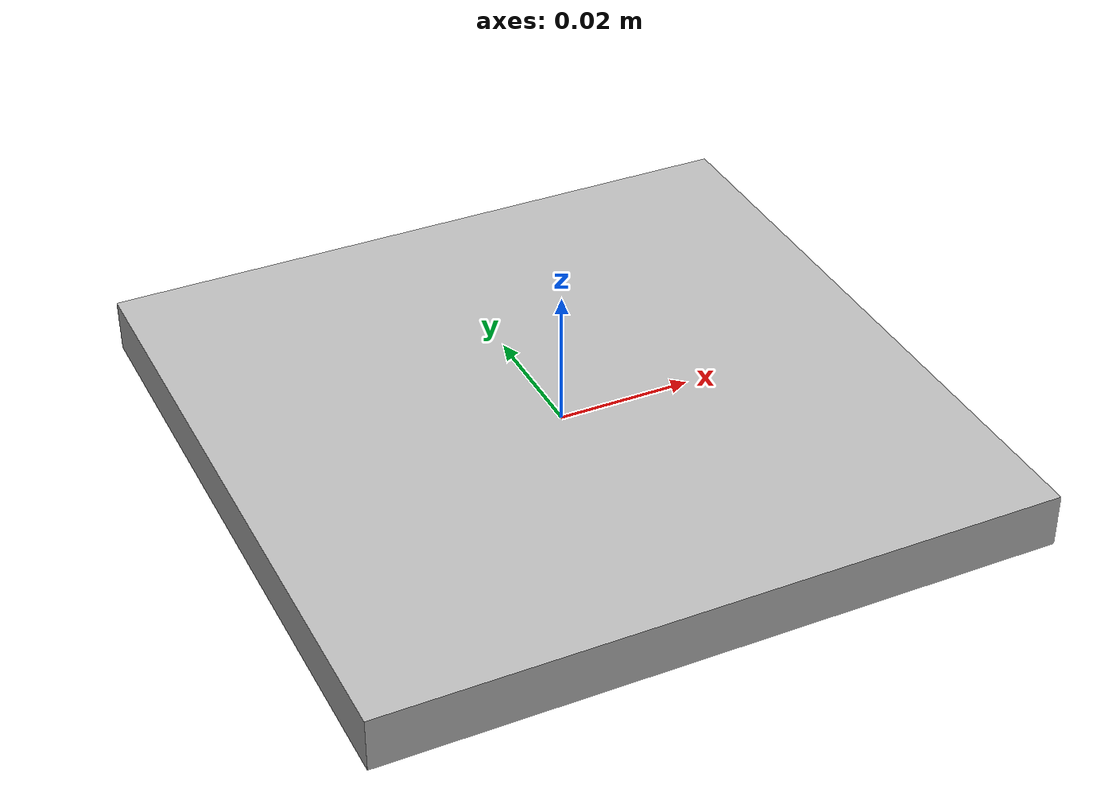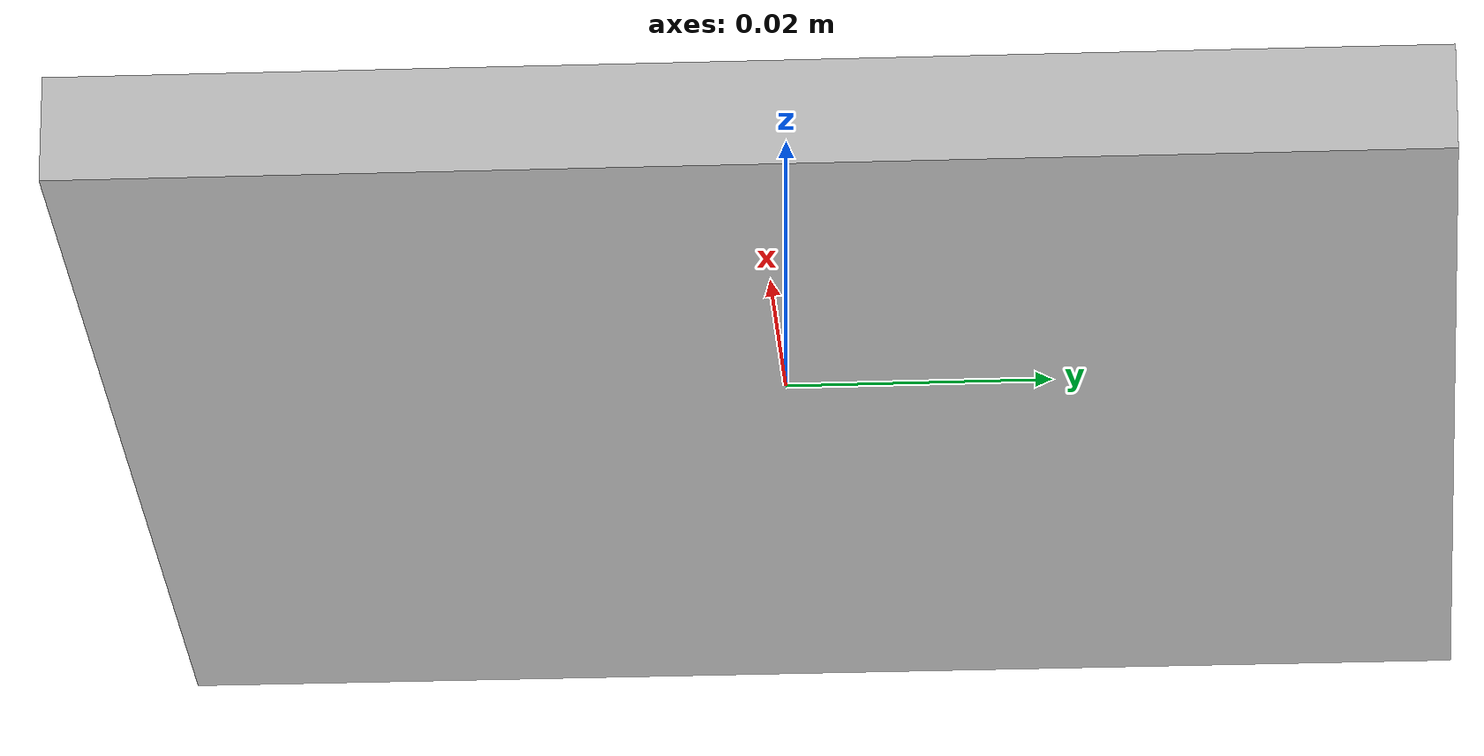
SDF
<?xml version="1.0" ?>
<sdf version="1.6">
  <model name="aruco_2">
    <static>true</static>
    <link name="link">
      <collision name="collision">
        <geometry>
          <mesh>
            <uri>meshes/aruco_2.dae</uri>
             <scale>0.1 0.1 0.1</scale>
          </mesh>
        </geometry>
      </collision>
      <visual name="visual">
        <geometry>
          <mesh>
            <uri>meshes/aruco_2.dae</uri>
             <scale>0.1 0.1 0.1</scale>
          </mesh>
        </geometry>
      </visual>
    </link>
  </model>
</sdf>
